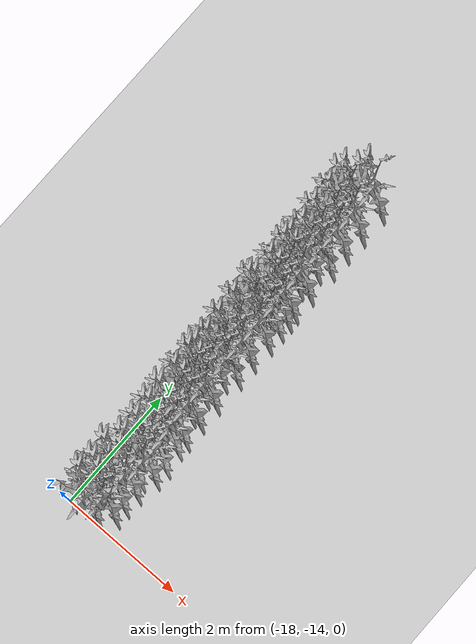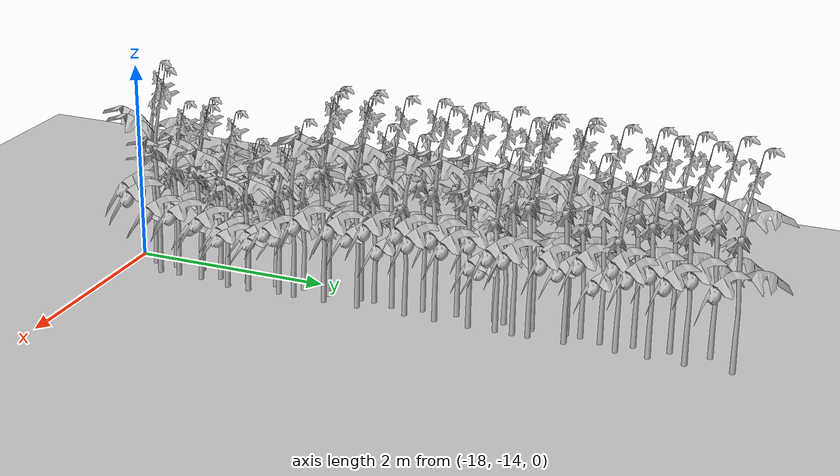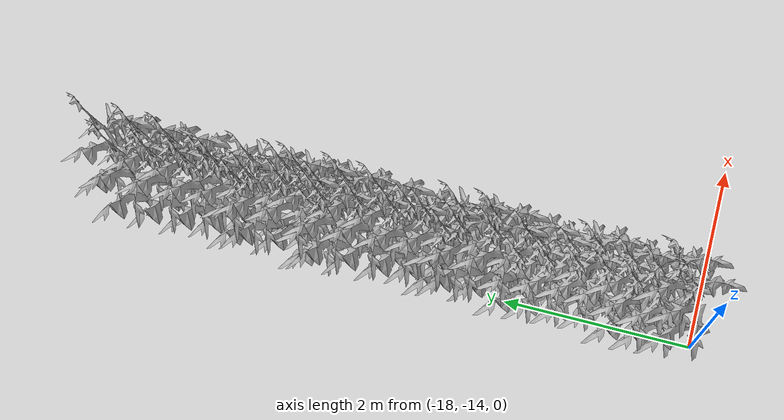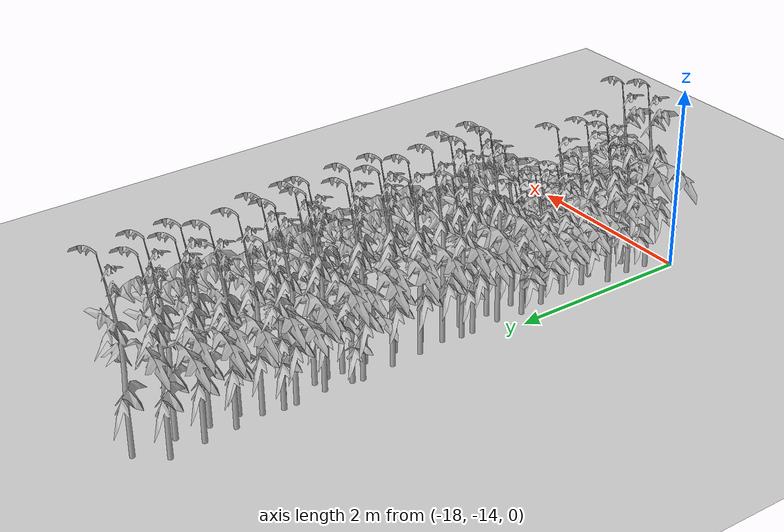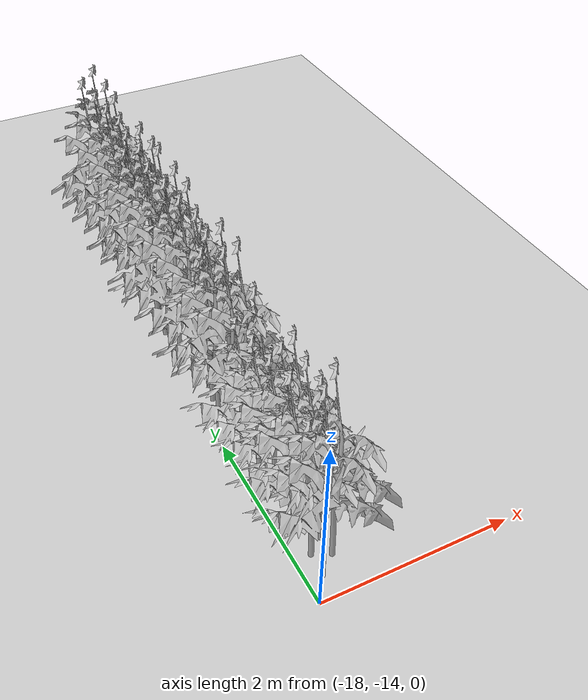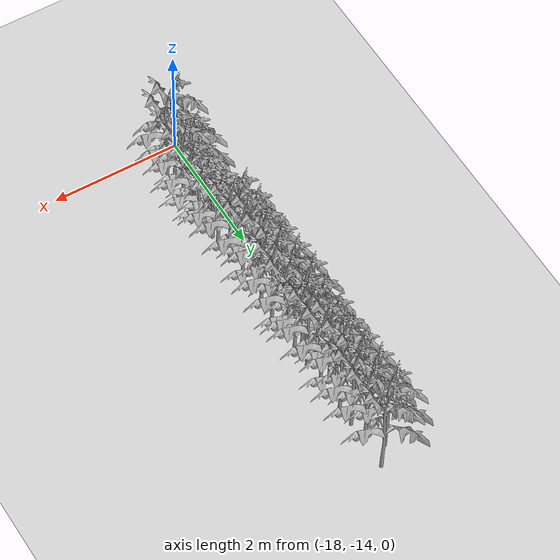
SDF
<sdf version="1.6">
 <world name="default">
  <model name="ground_plane">
   <static>1</static>
   <link name="link">
    <collision name="collision">
     <geometry><plane><normal>0 0 1</normal><size>100 100</size></plane></geometry>
     <surface>
      <contact><collide_bitmask>65535</collide_bitmask></contact>
      <friction><ode><mu>100</mu><mu2>50</mu2></ode></friction>
     </surface>
    </collision>
    <visual name="visual">
     <cast_shadows>0</cast_shadows>
     <geometry><plane><normal>0 0 1</normal><size>100 100</size></plane></geometry>
     <material>
      <script><uri>file://media/materials/scripts/gazebo.material</uri><name>Gazebo/Grey</name></script>
     </material>
    </visual>
   </link>
  </model>
  <model name="Front_Plant">
   <model name="Front_Plant">
    <model name="Front_Plant">
     <model name="tomato_plant_big">
      <static>1</static>
      <link name="link">
       <collision name="collision">
        <geometry>
         <mesh><scale>5e-06 5e-06 6e-06</scale><uri>model://tomato_plant_big/meshes/tomato-plant.dae</uri></mesh>
        </geometry>
       </collision>
       <visual name="visual">
        <geometry>
         <mesh><scale>5e-06 5e-06 7e-06</scale><uri>model://tomato_plant_big/meshes/tomato-plant.dae</uri></mesh>
        </geometry>
       </visual>
      </link>
      <pose>0.066099 -0.5693 0 0 -0 0</pose>
     </model>
     <model name="tomato_plant_big_0">
      <static>1</static>
      <link name="link">
       <collision name="collision">
        <geometry>
         <mesh><scale>5e-06 5e-06 6e-06</scale><uri>model://tomato_plant_big/meshes/tomato-plant.dae</uri></mesh>
        </geometry>
       </collision>
       <visual name="visual">
        <geometry>
         <mesh><scale>5e-06 5e-06 7e-06</scale><uri>model://tomato_plant_big/meshes/tomato-plant.dae</uri></mesh>
        </geometry>
       </visual>
      </link>
      <pose>-0.127857 -0.732187 0 0 -0 0</pose>
     </model>
     <model name="tomato_plant_medium">
      <static>1</static>
      <link name="link">
       <collision name="collision">
        <geometry>
         <mesh><scale>5e-06 5e-06 6e-06</scale><uri>model://tomato_plant_medium/meshes/tomato-plant.dae</uri></mesh>
        </geometry>
       </collision>
       <visual name="visual">
        <geometry>
         <mesh><scale>5e-06 5e-06 6e-06</scale><uri>model://tomato_plant_medium/meshes/tomato-plant.dae</uri></mesh>
        </geometry>
       </visual>
      </link>
      <pose>0.122987 0.218142 0 0 -0 0</pose>
     </model>
     <model name="tomato_plant_medium_0">
      <static>1</static>
      <link name="link">
       <collision name="collision">
        <geometry>
         <mesh><scale>5e-06 5e-06 6e-06</scale><uri>model://tomato_plant_medium/meshes/tomato-plant.dae</uri></mesh>
        </geometry>
       </collision>
       <visual name="visual">
        <geometry>
         <mesh><scale>5e-06 5e-06 6e-06</scale><uri>model://tomato_plant_medium/meshes/tomato-plant.dae</uri></mesh>
        </geometry>
       </visual>
      </link>
      <pose>0.063601 -0.11224 0 0 -0 0</pose>
     </model>
     <model name="tomato_plant_medium_1">
      <static>1</static>
      <link name="link">
       <collision name="collision">
        <geometry>
         <mesh><scale>5e-06 5e-06 6e-06</scale><uri>model://tomato_plant_medium/meshes/tomato-plant.dae</uri></mesh>
        </geometry>
       </collision>
       <visual name="visual">
        <geometry>
         <mesh><scale>5e-06 5e-06 6e-06</scale><uri>model://tomato_plant_medium/meshes/tomato-plant.dae</uri></mesh>
        </geometry>
       </visual>
      </link>
      <pose>-0.136409 -0.201165 0 0 -0 0</pose>
     </model>
     <model name="tomato_plant_medium_2">
      <static>1</static>
      <link name="link">
       <collision name="collision">
        <geometry>
         <mesh><scale>5e-06 5e-06 6e-06</scale><uri>model://tomato_plant_medium/meshes/tomato-plant.dae</uri></mesh>
        </geometry>
       </collision>
       <visual name="visual">
        <geometry>
         <mesh><scale>5e-06 5e-06 6e-06</scale><uri>model://tomato_plant_medium/meshes/tomato-plant.dae</uri></mesh>
        </geometry>
       </visual>
      </link>
      <pose>0.058749 -0.366518 0 0 -0 0</pose>
     </model>
     <model name="tomato_plant_small">
      <static>1</static>
      <link name="link">
       <collision name="collision">
        <geometry>
         <mesh><scale>5e-06 5e-06 5e-06</scale><uri>model://tomato_plant_small/meshes/tomato-plant.dae</uri></mesh>
        </geometry>
       </collision>
       <visual name="visual">
        <geometry>
         <mesh><scale>5e-06 5e-06 5e-06</scale><uri>model://tomato_plant_small/meshes/tomato-plant.dae</uri></mesh>
        </geometry>
       </visual>
      </link>
      <pose>-0.070714 0.646602 0 0 -0 0</pose>
     </model>
     <model name="tomato_plant_small_0">
      <static>1</static>
      <link name="link">
       <collision name="collision">
        <geometry>
         <mesh><scale>5e-06 5e-06 5e-06</scale><uri>model://tomato_plant_small/meshes/tomato-plant.dae</uri></mesh>
        </geometry>
       </collision>
       <visual name="visual">
        <geometry>
         <mesh><scale>5e-06 5e-06 5e-06</scale><uri>model://tomato_plant_small/meshes/tomato-plant.dae</uri></mesh>
        </geometry>
       </visual>
      </link>
      <pose>0.074729 0.75209 0 0 -0 0</pose>
     </model>
     <model name="tomato_plant_small_1">
      <static>1</static>
      <link name="link">
       <collision name="collision">
        <geometry>
         <mesh><scale>5e-06 5e-06 5e-06</scale><uri>model://tomato_plant_small/meshes/tomato-plant.dae</uri></mesh>
        </geometry>
       </collision>
       <visual name="visual">
        <geometry>
         <mesh><scale>5e-06 5e-06 5e-06</scale><uri>model://tomato_plant_small/meshes/tomato-plant.dae</uri></mesh>
        </geometry>
       </visual>
      </link>
      <pose>0.12147 0.444739 0 0 -0 0</pose>
     </model>
     <model name="tomato_plant_small_2">
      <static>1</static>
      <link name="link">
       <collision name="collision">
        <geometry>
         <mesh><scale>5e-06 5e-06 5e-06</scale><uri>model://tomato_plant_small/meshes/tomato-plant.dae</uri></mesh>
        </geometry>
       </collision>
       <visual name="visual">
        <geometry>
         <mesh><scale>5e-06 5e-06 5e-06</scale><uri>model://tomato_plant_small/meshes/tomato-plant.dae</uri></mesh>
        </geometry>
       </visual>
      </link>
      <pose>-0.041969 0.348263 0 0 -0 0</pose>
     </model>
     <model name="tomato_plant_small_3">
      <static>1</static>
      <link name="link">
       <collision name="collision">
        <geometry>
         <mesh><scale>5e-06 5e-06 5e-06</scale><uri>model://tomato_plant_small/meshes/tomato-plant.dae</uri></mesh>
        </geometry>
       </collision>
       <visual name="visual">
        <geometry>
         <mesh><scale>5e-06 5e-06 5e-06</scale><uri>model://tomato_plant_small/meshes/tomato-plant.dae</uri></mesh>
        </geometry>
       </visual>
      </link>
      <pose>-0.0217 0.061756 0 0 -0 0</pose>
     </model>
     <model name="tomato_plant_small_4">
      <static>1</static>
      <link name="link">
       <collision name="collision">
        <geometry>
         <mesh><scale>5e-06 5e-06 5e-06</scale><uri>model://tomato_plant_small/meshes/tomato-plant.dae</uri></mesh>
        </geometry>
       </collision>
       <visual name="visual">
        <geometry>
         <mesh><scale>5e-06 5e-06 5e-06</scale><uri>model://tomato_plant_small/meshes/tomato-plant.dae</uri></mesh>
        </geometry>
       </visual>
      </link>
      <pose>-0.108883 -0.490262 0 0 -0 0</pose>
     </model>
     <static>0</static>
     <pose>0.012031 -0.967708 0 0 -0 0</pose>
    </model>
    <model name="Middle_Plant">
     <model name="tomato_plant_big">
      <static>1</static>
      <link name="link">
       <collision name="collision">
        <geometry>
         <mesh><scale>5e-06 5e-06 6e-06</scale><uri>model://tomato_plant_big/meshes/tomato-plant.dae</uri></mesh>
        </geometry>
       </collision>
       <visual name="visual">
        <geometry>
         <mesh><scale>5e-06 5e-06 7e-06</scale><uri>model://tomato_plant_big/meshes/tomato-plant.dae</uri></mesh>
        </geometry>
       </visual>
      </link>
      <pose>0.085326 1.23023 0 0 -0 0</pose>
     </model>
     <model name="tomato_plant_big_0">
      <static>1</static>
      <link name="link">
       <collision name="collision">
        <geometry>
         <mesh><scale>5e-06 5e-06 6e-06</scale><uri>model://tomato_plant_big/meshes/tomato-plant.dae</uri></mesh>
        </geometry>
       </collision>
       <visual name="visual">
        <geometry>
         <mesh><scale>5e-06 5e-06 7e-06</scale><uri>model://tomato_plant_big/meshes/tomato-plant.dae</uri></mesh>
        </geometry>
       </visual>
      </link>
      <pose>-0.133881 0.970183 0 0 -0 0</pose>
     </model>
     <model name="tomato_plant_big_1">
      <static>1</static>
      <link name="link">
       <collision name="collision">
        <geometry>
         <mesh><scale>5e-06 5e-06 6e-06</scale><uri>model://tomato_plant_big/meshes/tomato-plant.dae</uri></mesh>
        </geometry>
       </collision>
       <visual name="visual">
        <geometry>
         <mesh><scale>5e-06 5e-06 7e-06</scale><uri>model://tomato_plant_big/meshes/tomato-plant.dae</uri></mesh>
        </geometry>
       </visual>
      </link>
      <pose>0.091162 0.792381 0 0 -0 0</pose>
     </model>
     <model name="tomato_plant_big_2">
      <static>1</static>
      <link name="link">
       <collision name="collision">
        <geometry>
         <mesh><scale>5e-06 5e-06 6e-06</scale><uri>model://tomato_plant_big/meshes/tomato-plant.dae</uri></mesh>
        </geometry>
       </collision>
       <visual name="visual">
        <geometry>
         <mesh><scale>5e-06 5e-06 7e-06</scale><uri>model://tomato_plant_big/meshes/tomato-plant.dae</uri></mesh>
        </geometry>
       </visual>
      </link>
      <pose>-0.099228 0.602587 0 0 -0 0</pose>
     </model>
     <model name="tomato_plant_big_3">
      <static>1</static>
      <link name="link">
       <collision name="collision">
        <geometry>
         <mesh><scale>5e-06 5e-06 6e-06</scale><uri>model://tomato_plant_big/meshes/tomato-plant.dae</uri></mesh>
        </geometry>
       </collision>
       <visual name="visual">
        <geometry>
         <mesh><scale>5e-06 5e-06 7e-06</scale><uri>model://tomato_plant_big/meshes/tomato-plant.dae</uri></mesh>
        </geometry>
       </visual>
      </link>
      <pose>0.083199 0.447645 0 0 -0 0</pose>
     </model>
     <model name="tomato_plant_big_4">
      <static>1</static>
      <link name="link">
       <collision name="collision">
        <geometry>
         <mesh><scale>5e-06 5e-06 6e-06</scale><uri>model://tomato_plant_big/meshes/tomato-plant.dae</uri></mesh>
        </geometry>
       </collision>
       <visual name="visual">
        <geometry>
         <mesh><scale>5e-06 5e-06 7e-06</scale><uri>model://tomato_plant_big/meshes/tomato-plant.dae</uri></mesh>
        </geometry>
       </visual>
      </link>
      <pose>-0.079499 0.263486 0 0 -0 0</pose>
     </model>
     <model name="tomato_plant_big_5">
      <static>1</static>
      <link name="link">
       <collision name="collision">
        <geometry>
         <mesh><scale>5e-06 5e-06 6e-06</scale><uri>model://tomato_plant_big/meshes/tomato-plant.dae</uri></mesh>
        </geometry>
       </collision>
       <visual name="visual">
        <geometry>
         <mesh><scale>5e-06 5e-06 7e-06</scale><uri>model://tomato_plant_big/meshes/tomato-plant.dae</uri></mesh>
        </geometry>
       </visual>
      </link>
      <pose>-0.033274 -0.040578 0 0 -0 0</pose>
     </model>
     <model name="tomato_plant_big_6">
      <static>1</static>
      <link name="link">
       <collision name="collision">
        <geometry>
         <mesh><scale>5e-06 5e-06 6e-06</scale><uri>model://tomato_plant_big/meshes/tomato-plant.dae</uri></mesh>
        </geometry>
       </collision>
       <visual name="visual">
        <geometry>
         <mesh><scale>5e-06 5e-06 7e-06</scale><uri>model://tomato_plant_big/meshes/tomato-plant.dae</uri></mesh>
        </geometry>
       </visual>
      </link>
      <pose>-0.07669 -0.382406 0 0 -0 0</pose>
     </model>
     <model name="tomato_plant_big_7">
      <static>1</static>
      <link name="link">
       <collision name="collision">
        <geometry>
         <mesh><scale>5e-06 5e-06 6e-06</scale><uri>model://tomato_plant_big/meshes/tomato-plant.dae</uri></mesh>
        </geometry>
       </collision>
       <visual name="visual">
        <geometry>
         <mesh><scale>5e-06 5e-06 7e-06</scale><uri>model://tomato_plant_big/meshes/tomato-plant.dae</uri></mesh>
        </geometry>
       </visual>
      </link>
      <pose>0.092388 -0.348189 0 0 -0 0</pose>
     </model>
     <model name="tomato_plant_big_8">
      <static>1</static>
      <link name="link">
       <collision name="collision">
        <geometry>
         <mesh><scale>5e-06 5e-06 6e-06</scale><uri>model://tomato_plant_big/meshes/tomato-plant.dae</uri></mesh>
        </geometry>
       </collision>
       <visual name="visual">
        <geometry>
         <mesh><scale>5e-06 5e-06 7e-06</scale><uri>model://tomato_plant_big/meshes/tomato-plant.dae</uri></mesh>
        </geometry>
       </visual>
      </link>
      <pose>0.099522 -0.697525 0 0 -0 0</pose>
     </model>
     <model name="tomato_plant_big_9">
      <static>1</static>
      <link name="link">
       <collision name="collision">
        <geometry>
         <mesh><scale>5e-06 5e-06 6e-06</scale><uri>model://tomato_plant_big/meshes/tomato-plant.dae</uri></mesh>
        </geometry>
       </collision>
       <visual name="visual">
        <geometry>
         <mesh><scale>5e-06 5e-06 7e-06</scale><uri>model://tomato_plant_big/meshes/tomato-plant.dae</uri></mesh>
        </geometry>
       </visual>
      </link>
      <pose>-0.050449 -0.712772 0 0 -0 0</pose>
     </model>
     <model name="tomato_plant_medium">
      <static>1</static>
      <link name="link">
       <collision name="collision">
        <geometry>
         <mesh><scale>5e-06 5e-06 6e-06</scale><uri>model://tomato_plant_medium/meshes/tomato-plant.dae</uri></mesh>
        </geometry>
       </collision>
       <visual name="visual">
        <geometry>
         <mesh><scale>5e-06 5e-06 6e-06</scale><uri>model://tomato_plant_medium/meshes/tomato-plant.dae</uri></mesh>
        </geometry>
       </visual>
      </link>
      <pose>0.078434 0.139842 0 0 -0 0</pose>
     </model>
     <model name="tomato_plant_medium_0">
      <static>1</static>
      <link name="link">
       <collision name="collision">
        <geometry>
         <mesh><scale>5e-06 5e-06 6e-06</scale><uri>model://tomato_plant_medium/meshes/tomato-plant.dae</uri></mesh>
        </geometry>
       </collision>
       <visual name="visual">
        <geometry>
         <mesh><scale>5e-06 5e-06 6e-06</scale><uri>model://tomato_plant_medium/meshes/tomato-plant.dae</uri></mesh>
        </geometry>
       </visual>
      </link>
      <pose>-0.079755 -0.244483 0 0 -0 0</pose>
     </model>
     <model name="tomato_plant_medium_1">
      <static>1</static>
      <link name="link">
       <collision name="collision">
        <geometry>
         <mesh><scale>5e-06 5e-06 6e-06</scale><uri>model://tomato_plant_medium/meshes/tomato-plant.dae</uri></mesh>
        </geometry>
       </collision>
       <visual name="visual">
        <geometry>
         <mesh><scale>5e-06 5e-06 6e-06</scale><uri>model://tomato_plant_medium/meshes/tomato-plant.dae</uri></mesh>
        </geometry>
       </visual>
      </link>
      <pose>0.106744 -1.01815 0 0 -0 0</pose>
     </model>
     <model name="tomato_plant_small">
      <static>1</static>
      <link name="link">
       <collision name="collision">
        <geometry>
         <mesh><scale>5e-06 5e-06 5e-06</scale><uri>model://tomato_plant_small/meshes/tomato-plant.dae</uri></mesh>
        </geometry>
       </collision>
       <visual name="visual">
        <geometry>
         <mesh><scale>5e-06 5e-06 5e-06</scale><uri>model://tomato_plant_small/meshes/tomato-plant.dae</uri></mesh>
        </geometry>
       </visual>
      </link>
      <pose>-0.083979 -1.00222 0 0 -0 0</pose>
     </model>
     <static>0</static>
     <pose>-0.012038 0.96777 0 0 -0 0</pose>
    </model>
    <static>0</static>
    <pose>0.018711 -1.52253 0 0 -0 0</pose>
   </model>
   <model name="Middle_Plant">
    <model name="tomato_plant_big">
     <static>1</static>
     <link name="link">
      <collision name="collision">
       <geometry>
        <mesh><scale>5e-06 5e-06 6e-06</scale><uri>model://tomato_plant_big/meshes/tomato-plant.dae</uri></mesh>
       </geometry>
      </collision>
      <visual name="visual">
       <geometry>
        <mesh><scale>5e-06 5e-06 7e-06</scale><uri>model://tomato_plant_big/meshes/tomato-plant.dae</uri></mesh>
       </geometry>
      </visual>
     </link>
     <pose>0.085326 1.23023 0 0 -0 0</pose>
    </model>
    <model name="tomato_plant_big_0">
     <static>1</static>
     <link name="link">
      <collision name="collision">
       <geometry>
        <mesh><scale>5e-06 5e-06 6e-06</scale><uri>model://tomato_plant_big/meshes/tomato-plant.dae</uri></mesh>
       </geometry>
      </collision>
      <visual name="visual">
       <geometry>
        <mesh><scale>5e-06 5e-06 7e-06</scale><uri>model://tomato_plant_big/meshes/tomato-plant.dae</uri></mesh>
       </geometry>
      </visual>
     </link>
     <pose>-0.133881 0.970183 0 0 -0 0</pose>
    </model>
    <model name="tomato_plant_big_1">
     <static>1</static>
     <link name="link">
      <collision name="collision">
       <geometry>
        <mesh><scale>5e-06 5e-06 6e-06</scale><uri>model://tomato_plant_big/meshes/tomato-plant.dae</uri></mesh>
       </geometry>
      </collision>
      <visual name="visual">
       <geometry>
        <mesh><scale>5e-06 5e-06 7e-06</scale><uri>model://tomato_plant_big/meshes/tomato-plant.dae</uri></mesh>
       </geometry>
      </visual>
     </link>
     <pose>0.091162 0.792381 0 0 -0 0</pose>
    </model>
    <model name="tomato_plant_big_2">
     <static>1</static>
     <link name="link">
      <collision name="collision">
       <geometry>
        <mesh><scale>5e-06 5e-06 6e-06</scale><uri>model://tomato_plant_big/meshes/tomato-plant.dae</uri></mesh>
       </geometry>
      </collision>
      <visual name="visual">
       <geometry>
        <mesh><scale>5e-06 5e-06 7e-06</scale><uri>model://tomato_plant_big/meshes/tomato-plant.dae</uri></mesh>
       </geometry>
      </visual>
     </link>
     <pose>-0.099228 0.602587 0 0 -0 0</pose>
    </model>
    <model name="tomato_plant_big_3">
     <static>1</static>
     <link name="link">
      <collision name="collision">
       <geometry>
        <mesh><scale>5e-06 5e-06 6e-06</scale><uri>model://tomato_plant_big/meshes/tomato-plant.dae</uri></mesh>
       </geometry>
      </collision>
      <visual name="visual">
       <geometry>
        <mesh><scale>5e-06 5e-06 7e-06</scale><uri>model://tomato_plant_big/meshes/tomato-plant.dae</uri></mesh>
       </geometry>
      </visual>
     </link>
     <pose>0.083199 0.447645 0 0 -0 0</pose>
    </model>
    <model name="tomato_plant_big_4">
     <static>1</static>
     <link name="link">
      <collision name="collision">
       <geometry>
        <mesh><scale>5e-06 5e-06 6e-06</scale><uri>model://tomato_plant_big/meshes/tomato-plant.dae</uri></mesh>
       </geometry>
      </collision>
      <visual name="visual">
       <geometry>
        <mesh><scale>5e-06 5e-06 7e-06</scale><uri>model://tomato_plant_big/meshes/tomato-plant.dae</uri></mesh>
       </geometry>
      </visual>
     </link>
     <pose>-0.079499 0.263486 0 0 -0 0</pose>
    </model>
    <model name="tomato_plant_big_5">
     <static>1</static>
     <link name="link">
      <collision name="collision">
       <geometry>
        <mesh><scale>5e-06 5e-06 6e-06</scale><uri>model://tomato_plant_big/meshes/tomato-plant.dae</uri></mesh>
       </geometry>
      </collision>
      <visual name="visual">
       <geometry>
        <mesh><scale>5e-06 5e-06 7e-06</scale><uri>model://tomato_plant_big/meshes/tomato-plant.dae</uri></mesh>
       </geometry>
      </visual>
     </link>
     <pose>-0.033274 -0.040578 0 0 -0 0</pose>
    </model>
    <model name="tomato_plant_big_6">
     <static>1</static>
     <link name="link">
      <collision name="collision">
       <geometry>
        <mesh><scale>5e-06 5e-06 6e-06</scale><uri>model://tomato_plant_big/meshes/tomato-plant.dae</uri></mesh>
       </geometry>
      </collision>
      <visual name="visual">
       <geometry>
        <mesh><scale>5e-06 5e-06 7e-06</scale><uri>model://tomato_plant_big/meshes/tomato-plant.dae</uri></mesh>
       </geometry>
      </visual>
     </link>
     <pose>-0.07669 -0.382406 0 0 -0 0</pose>
    </model>
    <model name="tomato_plant_big_7">
     <static>1</static>
     <link name="link">
      <collision name="collision">
       <geometry>
        <mesh><scale>5e-06 5e-06 6e-06</scale><uri>model://tomato_plant_big/meshes/tomato-plant.dae</uri></mesh>
       </geometry>
      </collision>
      <visual name="visual">
       <geometry>
        <mesh><scale>5e-06 5e-06 7e-06</scale><uri>model://tomato_plant_big/meshes/tomato-plant.dae</uri></mesh>
       </geometry>
      </visual>
     </link>
     <pose>0.092388 -0.348189 0 0 -0 0</pose>
    </model>
    <model name="tomato_plant_big_8">
     <static>1</static>
     <link name="link">
      <collision name="collision">
       <geometry>
        <mesh><scale>5e-06 5e-06 6e-06</scale><uri>model://tomato_plant_big/meshes/tomato-plant.dae</uri></mesh>
       </geometry>
      </collision>
      <visual name="visual">
       <geometry>
        <mesh><scale>5e-06 5e-06 7e-06</scale><uri>model://tomato_plant_big/meshes/tomato-plant.dae</uri></mesh>
       </geometry>
      </visual>
     </link>
     <pose>0.099522 -0.697525 0 0 -0 0</pose>
    </model>
    <model name="tomato_plant_big_9">
     <static>1</static>
     <link name="link">
      <collision name="collision">
       <geometry>
        <mesh><scale>5e-06 5e-06 6e-06</scale><uri>model://tomato_plant_big/meshes/tomato-plant.dae</uri></mesh>
       </geometry>
      </collision>
      <visual name="visual">
       <geometry>
        <mesh><scale>5e-06 5e-06 7e-06</scale><uri>model://tomato_plant_big/meshes/tomato-plant.dae</uri></mesh>
       </geometry>
      </visual>
     </link>
     <pose>-0.050449 -0.712772 0 0 -0 0</pose>
    </model>
    <model name="tomato_plant_medium">
     <static>1</static>
     <link name="link">
      <collision name="collision">
       <geometry>
        <mesh><scale>5e-06 5e-06 6e-06</scale><uri>model://tomato_plant_medium/meshes/tomato-plant.dae</uri></mesh>
       </geometry>
      </collision>
      <visual name="visual">
       <geometry>
        <mesh><scale>5e-06 5e-06 6e-06</scale><uri>model://tomato_plant_medium/meshes/tomato-plant.dae</uri></mesh>
       </geometry>
      </visual>
     </link>
     <pose>0.078434 0.139842 0 0 -0 0</pose>
    </model>
    <model name="tomato_plant_medium_0">
     <static>1</static>
     <link name="link">
      <collision name="collision">
       <geometry>
        <mesh><scale>5e-06 5e-06 6e-06</scale><uri>model://tomato_plant_medium/meshes/tomato-plant.dae</uri></mesh>
       </geometry>
      </collision>
      <visual name="visual">
       <geometry>
        <mesh><scale>5e-06 5e-06 6e-06</scale><uri>model://tomato_plant_medium/meshes/tomato-plant.dae</uri></mesh>
       </geometry>
      </visual>
     </link>
     <pose>-0.079755 -0.244483 0 0 -0 0</pose>
    </model>
    <model name="tomato_plant_medium_1">
     <static>1</static>
     <link name="link">
      <collision name="collision">
       <geometry>
        <mesh><scale>5e-06 5e-06 6e-06</scale><uri>model://tomato_plant_medium/meshes/tomato-plant.dae</uri></mesh>
       </geometry>
      </collision>
      <visual name="visual">
       <geometry>
        <mesh><scale>5e-06 5e-06 6e-06</scale><uri>model://tomato_plant_medium/meshes/tomato-plant.dae</uri></mesh>
       </geometry>
      </visual>
     </link>
     <pose>0.106744 -1.01815 0 0 -0 0</pose>
    </model>
    <model name="tomato_plant_small">
     <static>1</static>
     <link name="link">
      <collision name="collision">
       <geometry>
        <mesh><scale>5e-06 5e-06 5e-06</scale><uri>model://tomato_plant_small/meshes/tomato-plant.dae</uri></mesh>
       </geometry>
      </collision>
      <visual name="visual">
       <geometry>
        <mesh><scale>5e-06 5e-06 5e-06</scale><uri>model://tomato_plant_small/meshes/tomato-plant.dae</uri></mesh>
       </geometry>
      </visual>
     </link>
     <pose>-0.083979 -1.00222 0 0 -0 0</pose>
    </model>
    <static>0</static>
    <pose>-0.018694 1.5225 0 0 -0 0</pose>
   </model>
   <static>0</static>
   <pose>-17.739 -10.5679 0 0 -0 0</pose>
  </model>
 </world>
</sdf>
